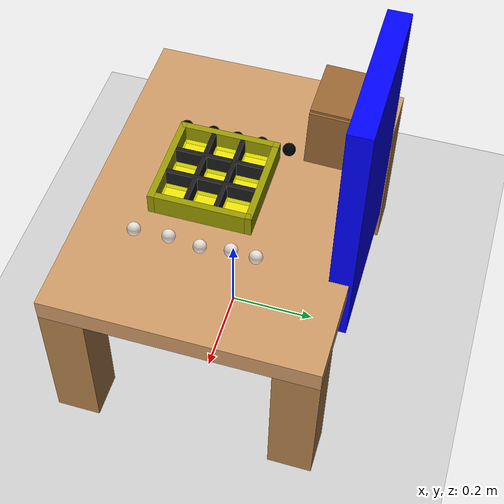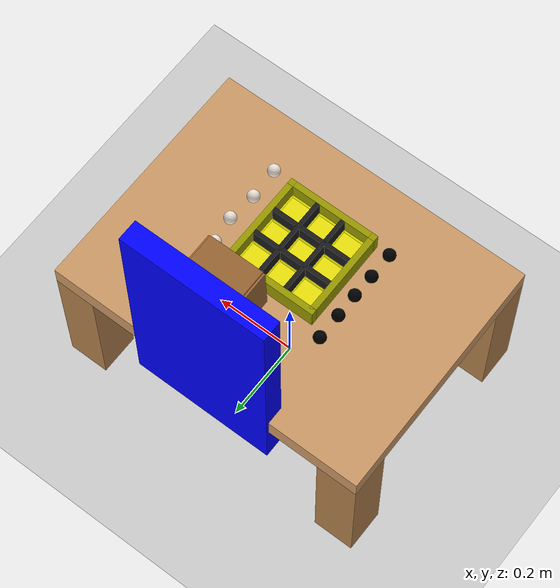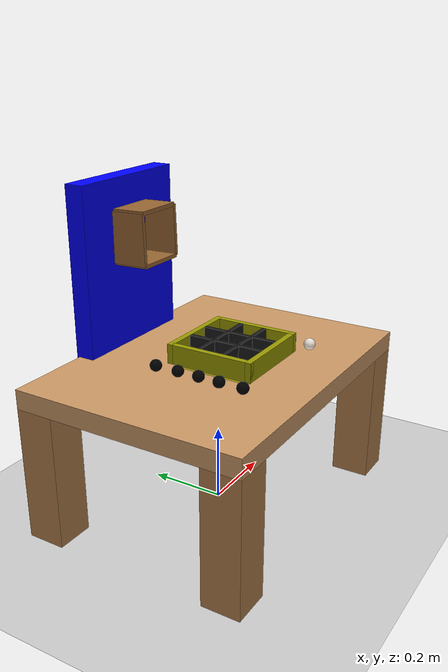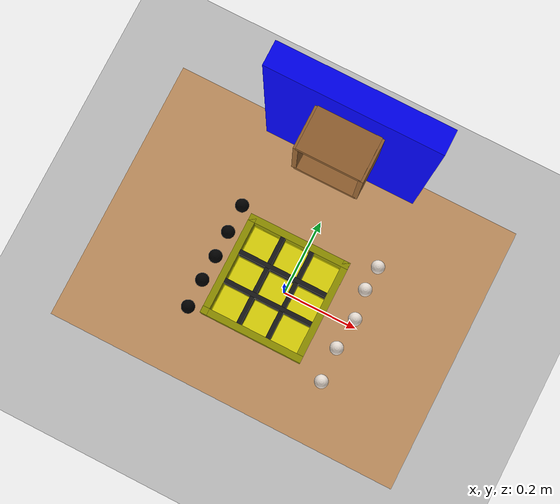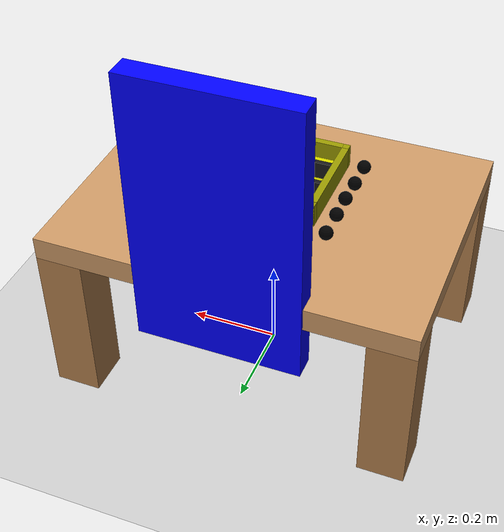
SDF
<sdf version="1.10">
 <world name="WORKINGPROTO">
  <physics name="1ms" type="ignored">
   <max_step_size>0.001</max_step_size>
   <real_time_factor>1</real_time_factor>
   <real_time_update_rate>1000</real_time_update_rate>
  </physics>
  <plugin name="gz::sim::systems::Physics" filename="gz-sim-physics-system"/>
  <plugin name="gz::sim::systems::UserCommands" filename="gz-sim-user-commands-system"/>
  <plugin name="gz::sim::systems::SceneBroadcaster" filename="gz-sim-scene-broadcaster-system"/>
  <gravity>0 0 -9.8000000000000007</gravity>
  <magnetic_field>5.5644999999999998e-06 2.2875799999999999e-05 -4.2388400000000002e-05</magnetic_field>
  <atmosphere type="adiabatic"/>
  <scene>
   <ambient>0.400000006 0.400000006 0.400000006 1</ambient>
   <background>0.699999988 0.699999988 0.699999988 1</background>
   <shadows>true</shadows>
  </scene>
  <model name="ground_plane">
   <static>true</static>
   <link name="link">
    <collision name="collision">
     <geometry><plane><normal>0 0 1</normal><size>100 100</size></plane></geometry>
     <surface>
      <contact><collide_bitmask>65535</collide_bitmask><ode><mu>100</mu><mu2>50</mu2></ode></contact>
      <friction><ode><mu>100</mu><mu2>50</mu2></ode></friction>
     </surface>
    </collision>
    <visual name="visual">
     <cast_shadows>false</cast_shadows>
     <geometry><plane><normal>0 0 1</normal><size>100 100</size></plane></geometry>
     <material>
      <ambient>0.800000012 0.800000012 0.800000012 1</ambient>
      <diffuse>0.800000012 0.800000012 0.800000012 1</diffuse>
      <specular>0 0 0 1</specular>
     </material>
    </visual>
    <inertial>
     <mass>1</mass>
     <inertia><ixx>1</ixx><ixy>0</ixy><ixz>0</ixz><iyy>1</iyy><iyz>0</iyz><izz>1</izz></inertia>
    </inertial>
   </link>
  </model>
  <model name="study_table">
   <static>true</static>
   <link name="table_link">
    <inertial>
     <mass>50</mass>
     <inertia><ixx>10</ixx><iyy>8</iyy><izz>6</izz><ixy>0</ixy><ixz>0</ixz><iyz>0</iyz></inertia>
    </inertial>
    <visual name="table_top">
     <pose>0 0 0.375 0 0 0</pose>
     <geometry><box><size>0.80000000000000004 0.59999999999999998 0.050000000000000003</size></box></geometry>
     <material>
      <ambient>0.800000012 0.600000024 0.400000006 1</ambient>
      <diffuse>0.800000012 0.600000024 0.400000006 1</diffuse>
     </material>
    </visual>
    <visual name="table_leg1">
     <pose>0.34999999999999998 0.25 0.17499999999999999 0 0 0</pose>
     <geometry><box><size>0.10000000000000001 0.10000000000000001 0.34999999999999998</size></box></geometry>
     <material>
      <ambient>0.699999988 0.5 0.300000012 1</ambient>
      <diffuse>0.699999988 0.5 0.300000012 1</diffuse>
     </material>
    </visual>
    <visual name="table_leg2">
     <pose>-0.34999999999999998 0.25 0.17499999999999999 0 0 0</pose>
     <geometry><box><size>0.10000000000000001 0.10000000000000001 0.34999999999999998</size></box></geometry>
     <material>
      <ambient>0.699999988 0.5 0.300000012 1</ambient>
      <diffuse>0.699999988 0.5 0.300000012 1</diffuse>
     </material>
    </visual>
    <visual name="table_leg3">
     <pose>0.34999999999999998 -0.25 0.17499999999999999 0 0 0</pose>
     <geometry><box><size>0.10000000000000001 0.10000000000000001 0.34999999999999998</size></box></geometry>
     <material>
      <ambient>0.699999988 0.5 0.300000012 1</ambient>
      <diffuse>0.699999988 0.5 0.300000012 1</diffuse>
     </material>
    </visual>
    <visual name="table_leg4">
     <pose>-0.34999999999999998 -0.25 0.17499999999999999 0 0 0</pose>
     <geometry><box><size>0.10000000000000001 0.10000000000000001 0.34999999999999998</size></box></geometry>
     <material>
      <ambient>0.699999988 0.5 0.300000012 1</ambient>
      <diffuse>0.699999988 0.5 0.300000012 1</diffuse>
     </material>
    </visual>
    <collision name="table_collision">
     <pose>0 0 0.375 0 0 0</pose>
     <geometry><box><size>0.80000000000000004 0.59999999999999998 0.050000000000000003</size></box></geometry>
    </collision>
   </link>
  </model>
  <model name="wall">
   <static>true</static>
   <pose>0 0.28255310654640198 0.68000000715255737 0 0 0</pose>
   <link name="wall_link">
    <inertial>
     <mass>20000000</mass>
     <inertia>
      <ixx>1.6699999999999999</ixx>
      <iyy>2.6699999999999999</iyy>
      <izz>1.0700000000000001</izz>
      <ixy>0</ixy>
      <ixz>0</ixz>
      <iyz>0</iyz>
     </inertia>
    </inertial>
    <visual name="wall_base">
     <pose>0 0 -0.14999999999999999 0 0 0</pose>
     <geometry><box><size>0.34999999999999998 0.050000000000000003 0.59999999999999998</size></box></geometry>
     <material><ambient>0 0 1 1</ambient><diffuse>0 0 1 1</diffuse></material>
    </visual>
    <collision name="wall_base_collision">
     <pose>0 0 -0.14999999999999999 0 0 0</pose>
     <geometry><box><size>0.34999999999999998 0.050000000000000003 0.59999999999999998</size></box></geometry>
    </collision>
   </link>
  </model>
  <model name="tictactoe_game">
   <static>false</static>
   <pose>2.0877657657628161e-05 -0.041227320350036206 0.41249989546565263 8.8383362878042328e-08 9.0853550789256734e-07 -0.00040046504796430264</pose>
   <link name="board">
    <inertial>
     <mass>2</mass>
     <inertia>
      <ixx>0.10000000000000001</ixx>
      <iyy>0.10000000000000001</iyy>
      <izz>0.10000000000000001</izz>
      <ixy>0</ixy>
      <ixz>0</ixz>
      <iyz>0</iyz>
     </inertia>
    </inertial>
    <visual name="board_visual">
     <geometry><box><size>0.20000000000000001 0.20000000000000001 0.025000000000000001</size></box></geometry>
     <material>
      <ambient>1 1 1.20000001e-08 0.800000012</ambient>
      <diffuse>1 1 1.19999999e-09 0.800000012</diffuse>
     </material>
    </visual>
    <visual name="grid_line1">
     <pose>-0.033300000000000003 0 0.025000000000000001 0 0 0</pose>
     <geometry><box><size>0.01 0.20000000000000001 0.050000000000000003</size></box></geometry>
     <material>
      <ambient>0.100000001 0.100000001 0.100000001 1</ambient>
      <diffuse>0.100000001 0.100000001 0.100000001 1</diffuse>
     </material>
    </visual>
    <visual name="grid_line2">
     <pose>0.033300000000000003 0 0.025000000000000001 0 0 0</pose>
     <geometry><box><size>0.01 0.20000000000000001 0.050000000000000003</size></box></geometry>
     <material>
      <ambient>0.100000001 0.100000001 0.100000001 1</ambient>
      <diffuse>0.100000001 0.100000001 0.100000001 1</diffuse>
     </material>
    </visual>
    <visual name="grid_line3">
     <pose>0 -0.033300000000000003 0.025000000000000001 0 0 0</pose>
     <geometry><box><size>0.20000000000000001 0.01 0.050000000000000003</size></box></geometry>
     <material>
      <ambient>0.100000001 0.100000001 0.100000001 1</ambient>
      <diffuse>0.100000001 0.100000001 0.100000001 1</diffuse>
     </material>
    </visual>
    <visual name="grid_line4">
     <pose>0 0.033300000000000003 0.025000000000000001 0 0 0</pose>
     <geometry><box><size>0.20000000000000001 0.01 0.050000000000000003</size></box></geometry>
     <material>
      <ambient>0.100000001 0.100000001 0.100000001 1</ambient>
      <diffuse>0.100000001 0.100000001 0.100000001 1</diffuse>
     </material>
    </visual>
    <collision name="board_collision">
     <geometry><box><size>0.20000000000000001 0.20000000000000001 0.025000000000000001</size></box></geometry>
    </collision>
    <collision name="grid_line1_collision">
     <pose>-0.033300000000000003 0 0.025000000000000001 0 0 0</pose>
     <geometry><box><size>0.01 0.20000000000000001 0.050000000000000003</size></box></geometry>
    </collision>
    <collision name="grid_line2_collision">
     <pose>0.033300000000000003 0 0.025000000000000001 0 0 0</pose>
     <geometry><box><size>0.01 0.20000000000000001 0.050000000000000003</size></box></geometry>
    </collision>
    <collision name="grid_line3_collision">
     <pose>0 -0.033300000000000003 0.025000000000000001 0 0 0</pose>
     <geometry><box><size>0.20000000000000001 0.01 0.050000000000000003</size></box></geometry>
    </collision>
    <collision name="grid_line4_collision">
     <pose>0 0.033300000000000003 0.025000000000000001 0 0 0</pose>
     <geometry><box><size>0.20000000000000001 0.01 0.050000000000000003</size></box></geometry>
    </collision>
    <collision name="wall_north">
     <pose>0 0.1075 0.025000000000000001 0 0 0</pose>
     <geometry><box><size>0.23000000000000001 0.014999999999999999 0.050000000000000003</size></box></geometry>
    </collision>
    <visual name="wall_north_visual">
     <pose>0 0.1075 0.025000000000000001 0 0 0</pose>
     <geometry><box><size>0.23000000000000001 0.014999999999999999 0.050000000000000003</size></box></geometry>
     <material>
      <ambient>0.600000006 0.600000006 0.000000006 1</ambient>
      <diffuse>0.600000006 0.600000006 0.000000006 1</diffuse>
     </material>
    </visual>
    <collision name="wall_south">
     <pose>0 -0.1075 0.025000000000000001 0 0 0</pose>
     <geometry><box><size>0.23000000000000001 0.014999999999999999 0.050000000000000003</size></box></geometry>
    </collision>
    <visual name="wall_south_visual">
     <pose>0 -0.1075 0.025000000000000001 0 0 0</pose>
     <geometry><box><size>0.23000000000000001 0.014999999999999999 0.050000000000000003</size></box></geometry>
     <material>
      <ambient>0.600000006 0.600000006 0.000000006 1</ambient>
      <diffuse>0.600000006 0.600000006 0.000000006 1</diffuse>
     </material>
    </visual>
    <collision name="wall_east">
     <pose>0.1075 0 0.025000000000000001 0 0 0</pose>
     <geometry><box><size>0.014999999999999999 0.20000000000000001 0.050000000000000003</size></box></geometry>
    </collision>
    <visual name="wall_east_visual">
     <pose>0.1075 0 0.025000000000000001 0 0 0</pose>
     <geometry><box><size>0.014999999999999999 0.20000000000000001 0.050000000000000003</size></box></geometry>
     <material>
      <ambient>0.600000006 0.600000006 0.000000006 1</ambient>
      <diffuse>0.600000006 0.600000006 0.000000006 1</diffuse>
     </material>
    </visual>
    <collision name="wall_west">
     <pose>-0.1075 0 0.025000000000000001 0 0 0</pose>
     <geometry><box><size>0.014999999999999999 0.20000000000000001 0.050000000000000003</size></box></geometry>
    </collision>
    <visual name="wall_west_visual">
     <pose>-0.1075 0 0.025000000000000001 0 0 0</pose>
     <geometry><box><size>0.014999999999999999 0.20000000000000001 0.050000000000000003</size></box></geometry>
     <material>
      <ambient>0.600000006 0.600000006 0.000000006 1</ambient>
      <diffuse>0.600000006 0.600000006 0.000000006 1</diffuse>
     </material>
    </visual>
    <collision name="corner_ne">
     <pose>0.1075 0.1075 0.025000000000000001 0 0 0</pose>
     <geometry><box><size>0.014999999999999999 0.014999999999999999 0.050000000000000003</size></box></geometry>
    </collision>
    <visual name="corner_ne_visual">
     <pose>0.1075 0.1075 0.025000000000000001 0 0 0</pose>
     <geometry><box><size>0.014999999999999999 0.014999999999999999 0.050000000000000003</size></box></geometry>
     <material>
      <ambient>0.600000006 0.600000006 0.000000006 1</ambient>
      <diffuse>0.600000006 0.600000006 0.000000006 1</diffuse>
     </material>
    </visual>
    <collision name="corner_nw">
     <pose>-0.1075 0.1075 0.025000000000000001 0 0 0</pose>
     <geometry><box><size>0.014999999999999999 0.014999999999999999 0.050000000000000003</size></box></geometry>
    </collision>
    <visual name="corner_nw_visual">
     <pose>-0.1075 0.1075 0.025000000000000001 0 0 0</pose>
     <geometry><box><size>0.014999999999999999 0.014999999999999999 0.050000000000000003</size></box></geometry>
     <material>
      <ambient>0.600000006 0.600000006 0.000000006 1</ambient>
      <diffuse>0.600000006 0.600000006 0.000000006 1</diffuse>
     </material>
    </visual>
    <collision name="corner_se">
     <pose>0.1075 -0.1075 0.025000000000000001 0 0 0</pose>
     <geometry><box><size>0.014999999999999999 0.014999999999999999 0.050000000000000003</size></box></geometry>
    </collision>
    <visual name="corner_se_visual">
     <pose>0.1075 -0.1075 0.025000000000000001 0 0 0</pose>
     <geometry><box><size>0.014999999999999999 0.014999999999999999 0.050000000000000003</size></box></geometry>
     <material>
      <ambient>0.600000006 0.600000006 0.000000006 1</ambient>
      <diffuse>0.600000006 0.600000006 0.000000006 1</diffuse>
     </material>
    </visual>
    <collision name="corner_sw">
     <pose>-0.1075 -0.1075 0.025000000000000001 0 0 0</pose>
     <geometry><box><size>0.014999999999999999 0.014999999999999999 0.050000000000000003</size></box></geometry>
    </collision>
    <visual name="corner_sw_visual">
     <pose>-0.1075 -0.1075 0.025000000000000001 0 0 0</pose>
     <geometry><box><size>0.014999999999999999 0.014999999999999999 0.050000000000000003</size></box></geometry>
     <material>
      <ambient>0.600000006 0.600000006 0.000000006 1</ambient>
      <diffuse>0.600000006 0.600000006 0.000000006 1</diffuse>
     </material>
    </visual>
   </link>
  </model>
  <model name="o_piece_1">
   <static>false</static>
   <pose>-0.14749899506568909 -0.15554991364479062 0.41499960297890465 0 0 0</pose>
   <link name="o_link">
    <inertial>
     <mass>0.050000000000000003</mass>
     <inertia><ixx>0.001</ixx><iyy>0.001</iyy><izz>0.001</izz><ixy>0</ixy><ixz>0</ixz><iyz>0</iyz></inertia>
    </inertial>
    <visual name="o_visual">
     <geometry><sphere><radius>0.014999999999999999</radius></sphere></geometry>
     <material><ambient>0 0 0 1</ambient><diffuse>0 0 0 1</diffuse></material>
    </visual>
    <collision name="o_collision">
     <geometry><sphere><radius>0.014999999999999999</radius></sphere></geometry>
    </collision>
   </link>
  </model>
  <model name="o_piece_2">
   <static>false</static>
   <pose>-0.14551700000000001 0.086727600000000002 0.41499960296575061 0 0 0</pose>
   <link name="o_link">
    <inertial>
     <mass>0.050000000000000003</mass>
     <inertia><ixx>0.001</ixx><iyy>0.001</iyy><izz>0.001</izz><ixy>0</ixy><ixz>0</ixz><iyz>0</iyz></inertia>
    </inertial>
    <visual name="o_visual">
     <geometry><sphere><radius>0.014999999999999999</radius></sphere></geometry>
     <material><ambient>0 0 0 1</ambient><diffuse>0 0 0 1</diffuse></material>
    </visual>
    <collision name="o_collision">
     <geometry><sphere><radius>0.014999999999999999</radius></sphere></geometry>
    </collision>
   </link>
  </model>
  <model name="o_piece_3">
   <static>false</static>
   <pose>-0.14555599999999999 -0.035008900000000003 0.41499960296575061 0 0 0</pose>
   <link name="o_link">
    <inertial>
     <mass>0.050000000000000003</mass>
     <inertia><ixx>0.001</ixx><iyy>0.001</iyy><izz>0.001</izz><ixy>0</ixy><ixz>0</ixz><iyz>0</iyz></inertia>
    </inertial>
    <visual name="o_visual">
     <geometry><sphere><radius>0.014999999999999999</radius></sphere></geometry>
     <material><ambient>0 0 0 1</ambient><diffuse>0 0 0 1</diffuse></material>
    </visual>
    <collision name="o_collision">
     <geometry><sphere><radius>0.014999999999999999</radius></sphere></geometry>
    </collision>
   </link>
  </model>
  <model name="o_piece_4">
   <static>false</static>
   <pose>-0.14728341996669772 -0.092032432556152344 0.41499960297890465 3.6146901355096902e-08 -1.4980699888914005e-08 1.797789991915005e-06</pose>
   <link name="o_link">
    <inertial>
     <mass>0.050000000000000003</mass>
     <inertia><ixx>0.001</ixx><iyy>0.001</iyy><izz>0.001</izz><ixy>0</ixy><ixz>0</ixz><iyz>0</iyz></inertia>
    </inertial>
    <visual name="o_visual">
     <geometry><sphere><radius>0.014999999999999999</radius></sphere></geometry>
     <material><ambient>0 0 0 1</ambient><diffuse>0 0 0 1</diffuse></material>
    </visual>
    <collision name="o_collision">
     <geometry><sphere><radius>0.014999999999999999</radius></sphere></geometry>
    </collision>
   </link>
  </model>
  <model name="o_piece_5">
   <static>false</static>
   <pose>-0.14580499999999999 0.022861599999999999 0.41499960296575061 0 0 0</pose>
   <link name="o_link">
    <inertial>
     <mass>0.050000000000000003</mass>
     <inertia><ixx>0.001</ixx><iyy>0.001</iyy><izz>0.001</izz><ixy>0</ixy><ixz>0</ixz><iyz>0</iyz></inertia>
    </inertial>
    <visual name="o_visual">
     <geometry><sphere><radius>0.014999999999999999</radius></sphere></geometry>
     <material><ambient>0 0 0 1</ambient><diffuse>0 0 0 1</diffuse></material>
    </visual>
    <collision name="o_collision">
     <geometry><sphere><radius>0.014999999999999999</radius></sphere></geometry>
    </collision>
   </link>
  </model>
  <model name="robot_box">
   <static>true</static>
   <pose>0 0.21924400329589844 0.68879997730255127 1.5400002335725291 0 0</pose>
   <link name="box_link">
    <inertial>
     <mass>5</mass>
     <inertia>
      <ixx>0.10000000000000001</ixx>
      <iyy>0.10000000000000001</iyy>
      <izz>0.10000000000000001</izz>
      <ixy>0</ixy>
      <ixz>0</ixz>
      <iyz>0</iyz>
     </inertia>
    </inertial>
    <visual name="front_wall">
     <pose>0.065000000000000002 0 0 0 0 0</pose>
     <geometry><box><size>0.01 0.13 0.105</size></box></geometry>
     <material>
      <ambient>0.600000024 0.400000006 0.200000003 1</ambient>
      <diffuse>0.600000024 0.400000006 0.200000003 1</diffuse>
     </material>
    </visual>
    <collision name="front_wall_collision">
     <pose>0.065000000000000002 0 0 0 0 0</pose>
     <geometry><box><size>0.01 0.13 0.105</size></box></geometry>
    </collision>
    <visual name="back_wall">
     <pose>-0.065000000000000002 0 0 0 0 0</pose>
     <geometry><box><size>0.01 0.13 0.105</size></box></geometry>
     <material>
      <ambient>0.600000024 0.400000006 0.200000003 1</ambient>
      <diffuse>0.600000024 0.400000006 0.200000003 1</diffuse>
     </material>
    </visual>
    <collision name="back_wall_collision">
     <pose>-0.065000000000000002 0 0 0 0 0</pose>
     <geometry><box><size>0.01 0.13 0.105</size></box></geometry>
    </collision>
    <visual name="left_wall">
     <pose>0 0.065000000000000002 0 0 0 0</pose>
     <geometry><box><size>0.13 0.01 0.105</size></box></geometry>
     <material>
      <ambient>0.600000024 0.400000006 0.200000003 1</ambient>
      <diffuse>0.600000024 0.400000006 0.200000003 1</diffuse>
     </material>
    </visual>
    <collision name="left_wall_collision">
     <pose>0 0.065000000000000002 0 0 0 0</pose>
     <geometry><box><size>0.13 0.01 0.105</size></box></geometry>
    </collision>
    <visual name="right_wall">
     <pose>0 -0.065000000000000002 0 0 0 0</pose>
     <geometry><box><size>0.13 0.01 0.105</size></box></geometry>
     <material>
      <ambient>0.600000024 0.400000006 0.200000003 1</ambient>
      <diffuse>0.600000024 0.400000006 0.200000003 1</diffuse>
     </material>
    </visual>
    <collision name="right_wall_collision">
     <pose>0 -0.065000000000000002 0 0 0 0</pose>
     <geometry><box><size>0.13 0.01 0.105</size></box></geometry>
    </collision>
   </link>
  </model>
  <model name="x_piece_1">
   <static>false</static>
   <pose>0.16868799924850464 -0.091408386826515198 0.41499960297890465 0 0 0</pose>
   <link name="x_link">
    <inertial>
     <mass>0.050000000000000003</mass>
     <inertia><ixx>0.001</ixx><iyy>0.001</iyy><izz>0.001</izz><ixy>0</ixy><ixz>0</ixz><iyz>0</iyz></inertia>
    </inertial>
    <visual name="x_visual">
     <geometry><sphere><radius>0.014999999999999999</radius></sphere></geometry>
     <material><ambient>1 1 1 0.800000012</ambient><diffuse>1 1 1 0.800000012</diffuse></material>
    </visual>
    <collision name="x_collision">
     <geometry><sphere><radius>0.014999999999999999</radius></sphere></geometry>
    </collision>
   </link>
  </model>
  <model name="x_piece_2">
   <static>false</static>
   <pose>0.16940295696258545 0.10000000149011612 0.41499961827352366 0 0 0</pose>
   <link name="x_link">
    <inertial>
     <mass>0.050000000000000003</mass>
     <inertia><ixx>0.001</ixx><iyy>0.001</iyy><izz>0.001</izz><ixy>0</ixy><ixz>0</ixz><iyz>0</iyz></inertia>
    </inertial>
    <visual name="x_visual">
     <geometry><sphere><radius>0.014999999999999999</radius></sphere></geometry>
     <material><ambient>1 1 1 0.800000012</ambient><diffuse>1 1 1 0.800000012</diffuse></material>
    </visual>
    <collision name="x_collision">
     <geometry><sphere><radius>0.014999999999999999</radius></sphere></geometry>
    </collision>
   </link>
  </model>
  <model name="x_piece_3">
   <static>false</static>
   <pose>0.16690699756145477 0.04513685405254364 0.41499961827352366 0 0 0</pose>
   <link name="x_link">
    <inertial>
     <mass>0.050000000000000003</mass>
     <inertia><ixx>0.001</ixx><iyy>0.001</iyy><izz>0.001</izz><ixy>0</ixy><ixz>0</ixz><iyz>0</iyz></inertia>
    </inertial>
    <visual name="x_visual">
     <geometry><sphere><radius>0.014999999999999999</radius></sphere></geometry>
     <material><ambient>1 1 1 0.800000012</ambient><diffuse>1 1 1 0.800000012</diffuse></material>
    </visual>
    <collision name="x_collision">
     <geometry><sphere><radius>0.014999999999999999</radius></sphere></geometry>
    </collision>
   </link>
  </model>
  <model name="x_piece_4">
   <static>false</static>
   <pose>0.17164875566959381 -0.16792421042919159 0.41499913334545269 5.4253501679197426e-08 2.2626000502430702e-08 -5.9116098270066022e-07</pose>
   <link name="x_link">
    <inertial>
     <mass>0.050000000000000003</mass>
     <inertia><ixx>0.001</ixx><iyy>0.001</iyy><izz>0.001</izz><ixy>0</ixy><ixz>0</ixz><iyz>0</iyz></inertia>
    </inertial>
    <visual name="x_visual">
     <geometry><sphere><radius>0.014999999999999999</radius></sphere></geometry>
     <material><ambient>1 1 1 0.800000012</ambient><diffuse>1 1 1 0.800000012</diffuse></material>
    </visual>
    <collision name="x_collision">
     <geometry><sphere><radius>0.014999999999999999</radius></sphere></geometry>
    </collision>
   </link>
  </model>
  <model name="x_piece_5">
   <static>false</static>
   <pose>0.17582499980926514 -0.020129891112446785 0.41499961827352366 0 0 0</pose>
   <link name="x_link">
    <inertial>
     <mass>0.050000000000000003</mass>
     <inertia><ixx>0.001</ixx><iyy>0.001</iyy><izz>0.001</izz><ixy>0</ixy><ixz>0</ixz><iyz>0</iyz></inertia>
    </inertial>
    <visual name="x_visual">
     <geometry><sphere><radius>0.014999999999999999</radius></sphere></geometry>
     <material><ambient>1 1 1 0.800000012</ambient><diffuse>1 1 1 0.800000012</diffuse></material>
    </visual>
    <collision name="x_collision">
     <geometry><sphere><radius>0.014999999999999999</radius></sphere></geometry>
    </collision>
   </link>
  </model>
  <light name="sun" type="directional">
   <pose>0 0 10 0 0 0</pose>
   <intensity>1</intensity>
   <direction>-0.5 0.10000000000000001 -0.90000000000000002</direction>
   <diffuse>0.800000012 0.800000012 0.800000012 1</diffuse>
   <specular>0.200000003 0.200000003 0.200000003 1</specular>
   <attenuation>
    <range>1000</range>
    <linear>0.0099999997764825821</linear>
    <constant>0.89999997615814209</constant>
    <quadratic>0.0010000000474974513</quadratic>
   </attenuation>
   <spot><inner_angle>0</inner_angle><outer_angle>0</outer_angle><falloff>0</falloff></spot>
  </light>
 </world>
</sdf>
